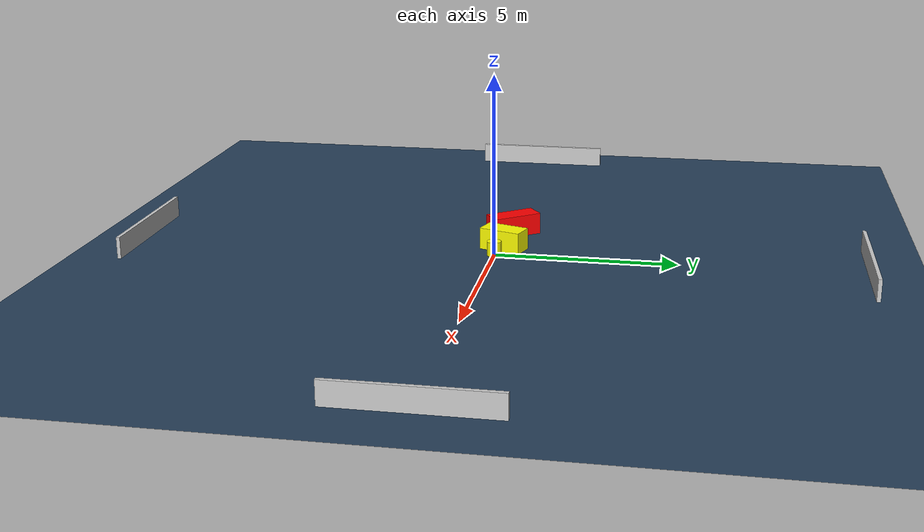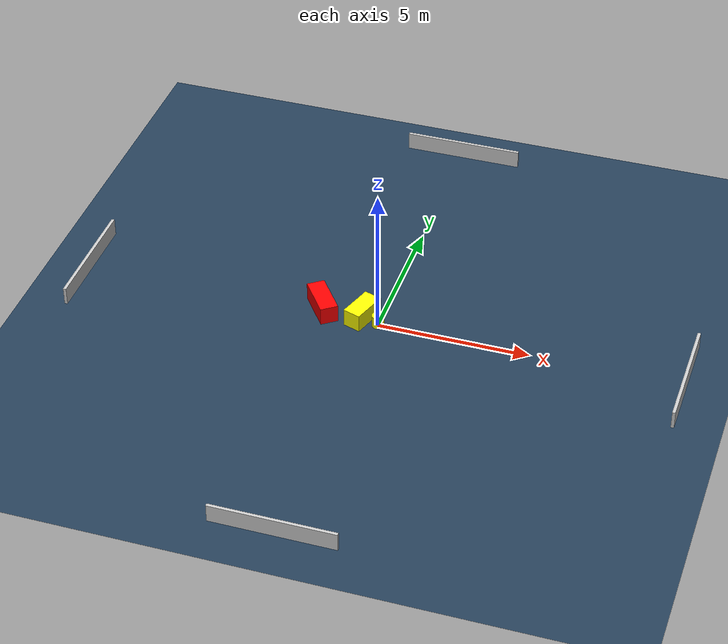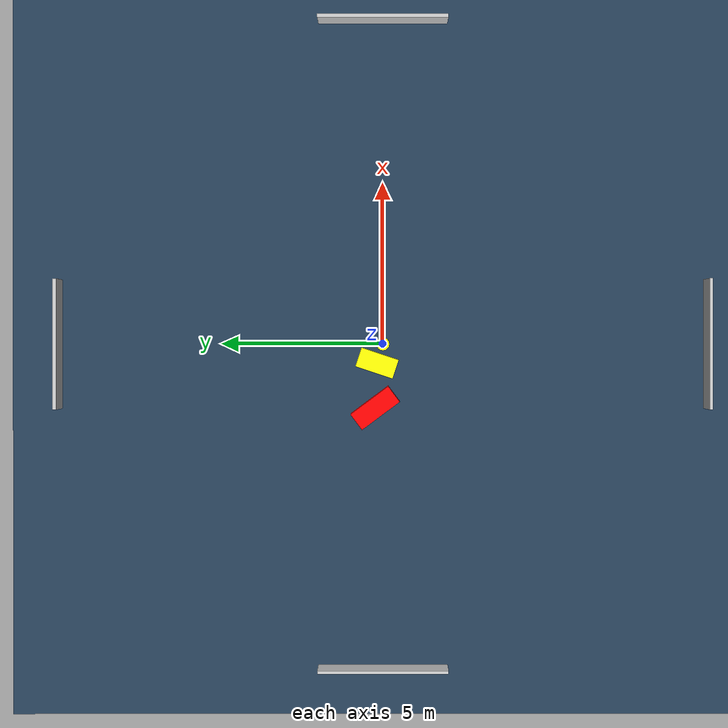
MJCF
<?xml version="1.0" ?>
<mujoco model="generated_environment">
  <option timestep="0.01" integrator="RK4" cone="elliptic"/>
  <default>
    <geom density="1"/>
  </default>
  <asset>
    <texture builtin="gradient" height="3072" name="skybox" rgb1="0.3 0.5 0.7" rgb2="0 0 0" type="skybox" width="512"/>
    <texture builtin="checker" height="300" name="groundplane" rgb1="0.2 0.3 0.4" rgb2="0.1 0.2 0.3" type="2d" width="300"/>
    <material name="groundplane" reflectance="0.2" texrepeat="5 5" texture="groundplane"/>
  </asset>
  <worldbody>
    <light dir="0 0 -1" directional="true" pos="0 0 1.5"/>
    <geom condim="3" friction="0.5 0.005 0.001" material="groundplane" name="floor" pos="0 0 0" size="0 0 0.05" type="plane"/>
    <body name="walls">
      <geom name="wall_1" condim="4" pos="-10.0 0.0 0.3" rgba="0.800000011920929 0.800000011920929 0.800000011920929 1.0" size="0.05 2.0 0.3" type="box"/>
      <geom name="wall_2" condim="4" pos="10.0 0.0 0.3" rgba="0.800000011920929 0.800000011920929 0.800000011920929 1.0" size="0.05 2.0 0.3" type="box"/>
      <geom name="wall_3" condim="4" pos="0.0 -10.0 0.3" rgba="0.800000011920929 0.800000011920929 0.800000011920929 1.0" size="2.0 0.05 0.3" type="box"/>
      <geom name="wall_4" condim="4" pos="0.0 10.0 0.3" rgba="0.800000011920929 0.800000011920929 0.800000011920929 1.0" size="2.0 0.05 0.3" type="box"/>
    </body>
    <body name="robot">
      <joint name="joint_x" type="slide" pos="0 0 0" axis="1 0 0"/>
      <joint name="joint_y" type="slide" pos="0 0 0" axis="0 1 0"/>
      <geom name="robot" type="cylinder" pos="0.0 0.0 0.2" size="0.2 0.2 0.0" mass="5.0" friction="1.0 0.005 0.0001" condim="4" rgba="1.0 1.0 0.0 1.0"/>
    </body>
    <body name="obstacle_1_movable">
      <geom name="obstacle_1_movable" condim="4" pos="-0.5831068564739504 0.17692900350135174 0.3" euler="0 0 71.75752349747044" friction="0.0 0.005 0.001" rgba="1.0 1.0 0.0 1.0" size="0.5948193905741983 0.30038957098454133 0.3" type="box" mass="0.1"/>
      <joint type="free"/>
    </body>
    <body name="obstacle_2_static">
      <geom name="obstacle_2_static" condim="4" pos="-1.9548772347588463 0.23684374959120286 0.3" euler="0 0 36.60523300252048" friction="0.0 0.005 0.001" rgba="1.0 0.0 0.0 1.0" size="0.29432939050102536 0.716930622164083 0.3" type="box"/>
    </body>
  </worldbody>
  <actuator>
    <motor name="actuator_x" joint="joint_x" gear="1" ctrlrange="-1 1"/>
    <motor name="actuator_y" joint="joint_y" gear="1" ctrlrange="-1 1"/>
  </actuator>
</mujoco>
